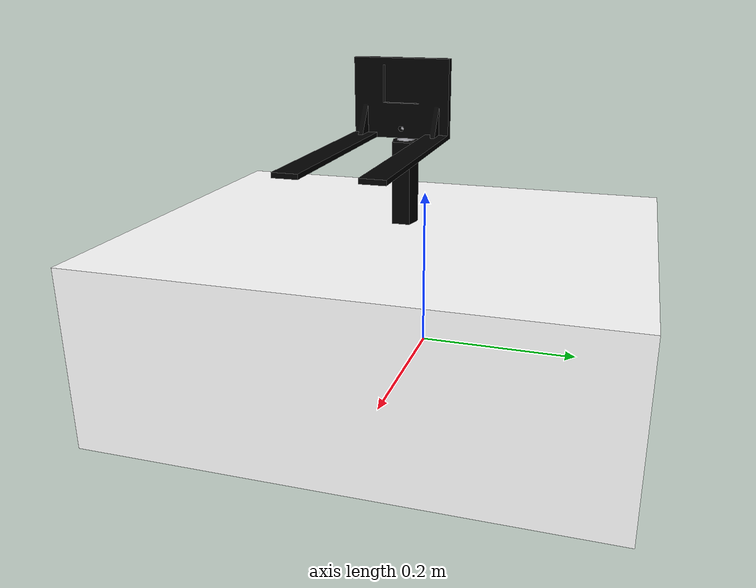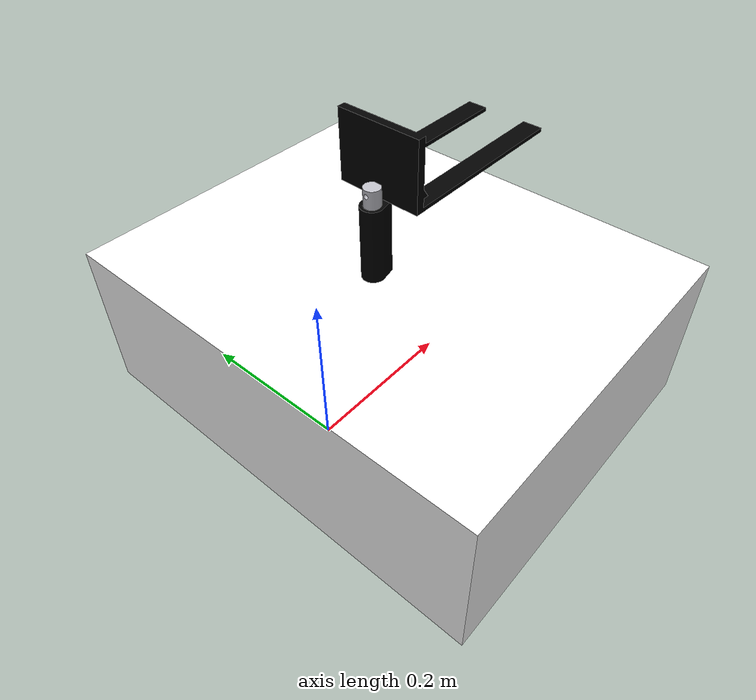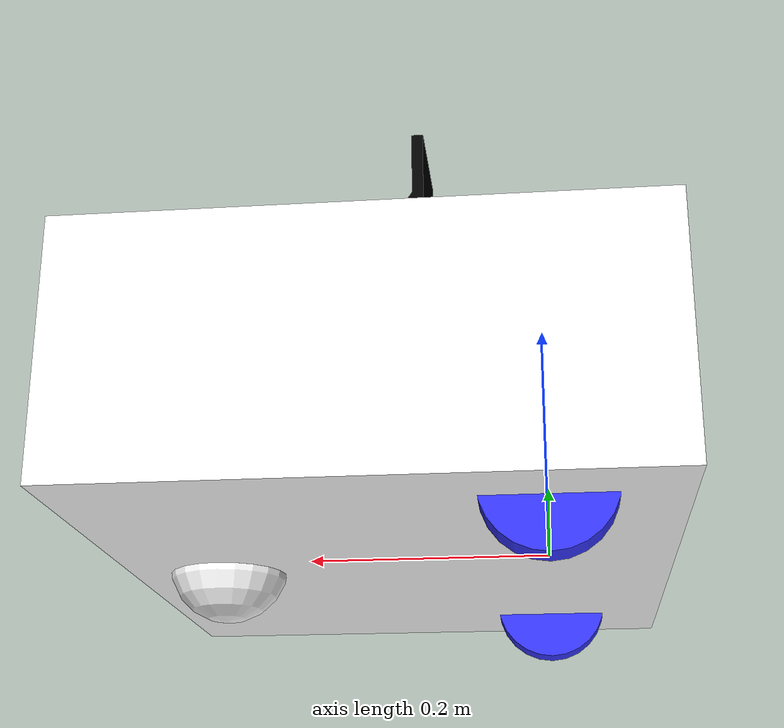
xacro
<?xml version="1.0"?>
<robot xmlns:xacro="http://www.ros.org/wiki/xacro" >

    <xacro:include filename="inertial_macros.xacro"/>

    <xacro:property name="chassis_length" value="0.45"/>
    <xacro:property name="chassis_width" value="0.56"/>
    <xacro:property name="chassis_height" value="0.20"/>
    <xacro:property name="chassis_mass" value="5.0"/>
    <xacro:property name="wheel_radius" value="0.05"/>
    <xacro:property name="wheel_thickness" value="0.03"/>
    <xacro:property name="wheel_mass" value="0.05"/>
    <xacro:property name="wheel_offset_x" value="0.10"/>
    <xacro:property name="wheel_offset_y" value="0.21"/>
    <xacro:property name="wheel_offset_z" value="0.01"/>
    <xacro:property name="caster_wheel_radius" value="0.05"/>
    <xacro:property name="caster_wheel_mass" value="0.01"/>
    <xacro:property name="caster_wheel_offset_x" value="0.37"/>
    <xacro:property name="caster_wheel_offset_z" value="${wheel_offset_z - wheel_radius + caster_wheel_radius}"/>

    <material name="white">
        <color rgba="1 1 1 1" />
    </material>

    <material name="orange">
        <color rgba="1 0.3 0.1 1"/>
    </material>

    <material name="blue">
        <color rgba="0.2 0.2 1 1"/>
    </material>

    <material name="black">
        <color rgba="0 0 0 1"/>
    </material>

    <material name="red">
        <color rgba="1 0 0 1"/>
    </material>

    <!-- BASE LINK -->

    <link name="base_link">

    </link>

    <!-- BASE_FOOTPRINT LINK -->

    <joint name="base_footprint_joint" type="fixed">
        <parent link="base_link"/>
        <child link="base_footprint"/>
        <origin xyz="0 0 0" rpy="0 0 0"/>
    </joint>

    <link name="base_footprint">
    </link>

    <!-- CHASSIS LINK -->

    <joint name="chassis_joint" type="fixed">
        <parent link="base_link"/>
        <child link="chassis"/>
        <origin xyz="${-wheel_offset_x} 0 ${-wheel_offset_z}"/>
    </joint>

    <link name="chassis">
        <visual>
            <origin xyz="${chassis_length/2} 0 ${chassis_height/2}"/>
            <geometry>
                <box size="${chassis_length} ${chassis_width} ${chassis_height}"/>
            </geometry>
            <material name="white"/>
        </visual>
        <collision>
            <origin xyz="${chassis_length/2} 0 ${chassis_height/2}"/>
            <geometry>
                <box size="${chassis_length} ${chassis_width} ${chassis_height}"/>
            </geometry>
        </collision>
        <xacro:inertial_box mass="0.5" x="${chassis_length}" y="${chassis_width}" z="${chassis_height}">
            <origin xyz="${chassis_length/2} 0 ${chassis_height/2}" rpy="0 0 0"/>
        </xacro:inertial_box>
    </link>

    <!-- LEFT WHEEL LINK -->

    <joint name="left_wheel_joint" type="continuous">
        <parent link="base_link"/>
        <child link="left_wheel"/>
        <origin xyz="0 ${wheel_offset_y} 0" rpy="-${pi/2} 0 0" />
        <axis xyz="0 0 1"/>
    </joint>

    <link name="left_wheel">
        <visual>
            <geometry>
                <cylinder radius="${wheel_radius}" length="${wheel_thickness}"/>
            </geometry>
            <material name="blue"/>
        </visual>
        <collision>
            <geometry>
                <sphere radius="${wheel_radius}"/>
            </geometry>
        </collision>
        <xacro:inertial_cylinder mass="${wheel_mass}" length="${wheel_thickness}" radius="${wheel_radius}">
            <origin xyz="0 0 0" rpy="0 0 0"/>
        </xacro:inertial_cylinder>
    </link>

    <!-- RIGHT WHEEL LINK -->

    <joint name="right_wheel_joint" type="continuous">
        <parent link="base_link"/>
        <child link="right_wheel"/>
        <origin xyz="0 ${-wheel_offset_y} 0" rpy="${pi/2} 0 0" />
        <axis xyz="0 0 -1"/>
    </joint>

    <link name="right_wheel">
        <visual>
            <geometry>
                <cylinder radius="${wheel_radius}" length="${wheel_thickness}"/>
            </geometry>
            <material name="blue"/>
        </visual>
        <collision>
            <geometry>
                <sphere radius="${wheel_radius}"/>
            </geometry>
        </collision>
        <xacro:inertial_cylinder mass="${wheel_mass}" length="${wheel_thickness}" radius="${wheel_radius}">
            <origin xyz="0 0 0" rpy="0 0 0"/>
        </xacro:inertial_cylinder>
    </link>

    <!-- CASTER WHEEL LINK -->

    <joint name="caster_wheel_joint" type="fixed">
        <parent link="chassis"/>
        <child link="caster_wheel"/>
        <origin xyz="${caster_wheel_offset_x} 0 ${caster_wheel_offset_z}"/>
    </joint>

    <link name="caster_wheel">
        <visual>
            <geometry>
                <sphere radius="${caster_wheel_radius}"/>
            </geometry>
            <material name="white"/>
        </visual>
        <collision>
            <geometry>
                <sphere radius="${caster_wheel_radius}"/>
            </geometry>
        </collision>
        <xacro:inertial_sphere mass="${caster_wheel_mass}" radius="${caster_wheel_radius}">
            <origin xyz="0 0 0" rpy="0 0 0"/>
        </xacro:inertial_sphere>
    </link>

        <joint name="actuator_body_joint" type="fixed">
        <parent link="chassis"/>
        <child link="actuator_body"/>
        <origin xyz="0.19 0 0.020" rpy="0 0 3.14"/>
    </joint>

    <link name="actuator_body">
        <visual>
            <origin xyz="0.0075 0 0" rpy="-1.571 0 3.14"/>
            <geometry>
              <mesh filename="file://$(find armsbot_description)/meshes/actuator_body.stl" scale="1.0 1.0 1.0"/>
            </geometry>
            <material name="black"/>
        </visual>
        <collision>
            <origin xyz="0.0075 0 0" rpy="-1.571 0 3.14"/>
            <geometry>
                <mesh filename="file://$(find armsbot_description)/meshes/actuator_body.stl" scale="1.0 1.0 1.0"/>
            </geometry>
        </collision>
        <xacro:inertial_cylinder mass="0.7" length="0.30" radius="0.01">
            <origin xyz="0.0075 0 0" rpy="-1.571 0 3.14"/>
        </xacro:inertial_cylinder>
    </link>

    <joint name="actuator_rod_joint" type="prismatic">
        <parent link="actuator_body"/>
        <child link="actuator_rod"/>
        <origin xyz="0.0 0 0.07" rpy="0 0 3.14"/>
        <axis xyz="0 0 1"/>
        <limit lower="-0.1" upper="0.5" effort="100000.0" velocity="1.0"/>
        <dynamics damping="0.001" friction="0.0001"/>
    </joint>

    <link name="actuator_rod">
        <visual>
            <origin xyz="0 0 0.225" rpy=" -1.571 0 0"/>
            <geometry>
              <mesh filename="file://$(find armsbot_description)/meshes/actuator_rod.stl" scale="1.0 1.0 1.0"/>
            </geometry>
            <material name="silver"/>
        </visual>
        <collision>
            <origin xyz="0 0 0.225" rpy=" -1.5708 0 0"/>
            <geometry>
                <mesh filename="file://$(find armsbot_description)/meshes/actuator_rod.stl" scale="1.0 1.0 1.0"/>
            </geometry>
        </collision>
        <xacro:inertial_cylinder mass="0.3" length="0.25" radius="0.01">
            <origin xyz="0 0 0.225" rpy=" -1.5708 0 0"/>
        </xacro:inertial_cylinder>
    </link>

       <joint name="forklift_joint" type="fixed">
        <parent link="actuator_rod"/>
        <child link="forklift"/>
        <origin xyz="0.014 0 0.208" rpy="0 1.571 0"/>
    </joint>

    <link name="forklift">
        <visual>
            <origin xyz=" 0 0 0" rpy=" -1.571 0 1.571"/>
            <geometry>
              <mesh filename="file://$(find armsbot_description)/meshes/forklift.stl" scale="1.0 1.0 1.0"/>
            </geometry>
            <material name="black"/>
        </visual>
        <collision>
            <origin xyz="0 0 0" rpy=" -1.571 0 1.571   "/>
            <geometry>
                <mesh filename="file://$(find armsbot_description)/meshes/forklift.stl" scale="1.0 1.0 1.0"/>
            </geometry>
        </collision>
        <xacro:inertial_box mass="0.1" x="0.105" y="0.09" z="0.06">
            <origin xyz="0 0 0" rpy=" 0 0 1.5708"/>
        </xacro:inertial_box>
    </link>

    <joint name="imu_joint" type="fixed">
        <origin xyz="0.0 0 0.09" rpy="0 0 0"/>
        <parent link="base_link"/>
        <child link="imu_link"/>
    </joint>
    <link name="imu_link">
        <inertial>
            <origin xyz="0 0 0" rpy="0 0 0"/>
            <mass value="0.01"/>
            <inertia ixx="1e-06" ixy="0" ixz="0" iyy="1e-06" iyz="0" izz="1e-06"/>
        </inertial>
        <visual>
            <origin xyz="0 0 0" rpy="0 0 0"/>
            <geometry>
                <box size="0.005 0.005 0.005"/>
            </geometry>
            <material name="imu_material">
                <color rgba="1 0 0 1"/>
            </material>
        </visual>
        <collision>
            <origin xyz="0 0 0" rpy="0 0 0"/>
            <geometry>
                <box size="0.005 0.005 0.005"/>
            </geometry>
        </collision>
    </link>

</robot>
